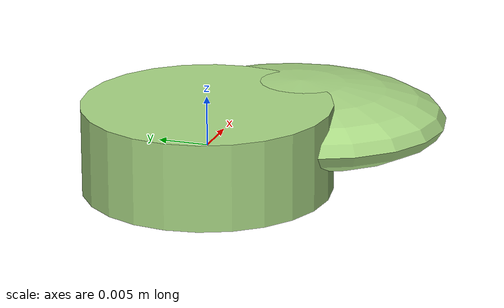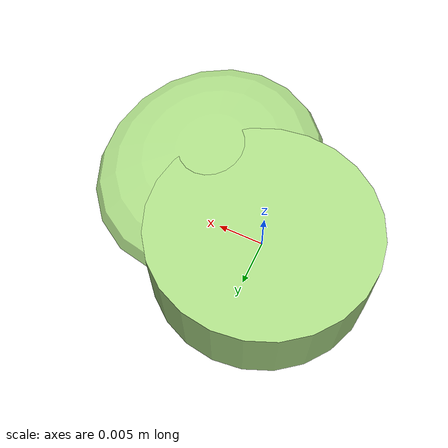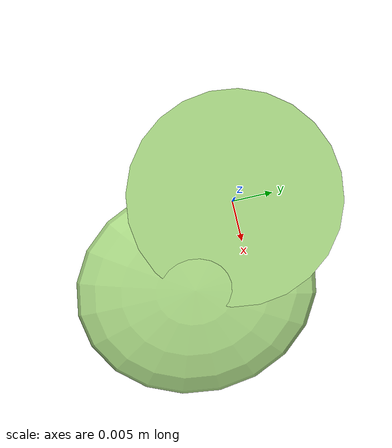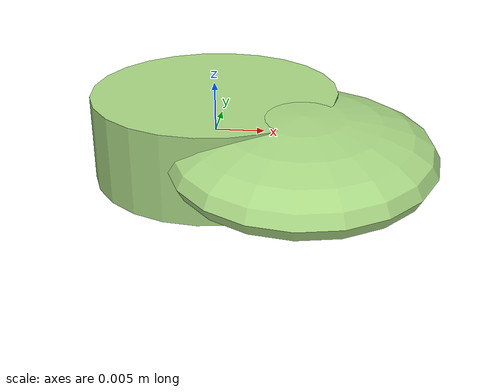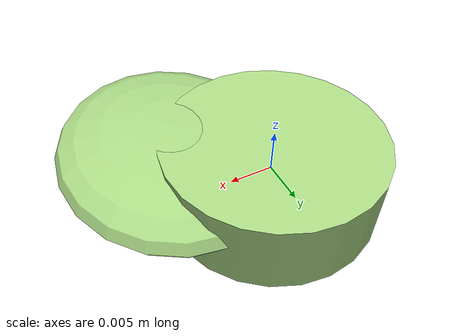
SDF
<?xml version="1.0" ?>
<!-- |    This document was autogenerated by xmacro from data/veggie_template/veggie_base.sdf.xacro  | -->
<!-- |    EDITING THIS FILE BY HAND IS NOT RECOMMENDED                                               | -->
<sdf version="1.8">
	<!-- Parameters -->
	<!-- Base -->
	<!-- Joint 0 -->
	<!-- Link 1 -->
	<!-- Joint 1 -->
	<!-- Link 2 -->
	<!-- Primitives -->
	<!-- All dimensions are half -->
	<!-- Object -->
	<model name="veggie">
		<!-- link0 -->
		<link name="link0">
			<inertial>
				<mass>0.0041902346672500245</mass>
				<inertia>
					<ixx>1.8765419304418916e-07</ixx>
					<ixy>0</ixy>
					<ixz>0</ixz>
					<iyy>1.8765419304418916e-07</iyy>
					<iyz>0</iyz>
					<izz>3.230529836288939e-07</izz>
				</inertia>
			</inertial>
			<visual name="link0_visual">
				<pose>0 0 0 0 0 0</pose>
				<geometry>
					<cylinder>
						<radius>0.012417458100103213</radius>
						<length>0.008650118377464799</length>
					</cylinder>
				</geometry>
				<material>
					<ambient>0.659 0.839 0.514 1</ambient>
					<diffuse>0.659 0.839 0.514 1</diffuse>
					<specular>0 0 0 0</specular>
					<emissive>0 0 0 1</emissive>
				</material>
			</visual>
			<collision name="link0_collision">
				<pose>0 0 0 0 0 0 </pose>
				<geometry>
					<cylinder>
						<radius>0.012417458100103213</radius>
						<length>0.008650118377464799</length>
					</cylinder>
				</geometry>
			</collision>
		</link>
		<!-- link1 -->
		<joint name="joint0" type="fixed">
			<pose relative_to="link0">0.009234079902853224 -0.006763878332806258 0.0007510781413285646 0.0 0.0 0.0</pose>
			<parent>link0</parent>
			<child>link1</child>
		</joint>
		<link name="link1">
			<pose relative_to="joint0">0 0 0 0 0 0</pose>
			<inertial>
				<mass>0.002931619912272129</mass>
				<inertia>
					<ixx>1.353239444024771e-07</ixx>
					<ixy>0</ixy>
					<ixz>0</ixz>
					<iyy>1.0282183987922297e-07</iyy>
					<iyz>0</iyz>
					<izz>2.2172724501691014e-07</izz>
				</inertia>
			</inertial>
			<visual name="link1_visual">
				<pose>0 0 0 0 0 0</pose>
				<geometry>
					<ellipsoid>
						<radii>0.012702979320298471 0.014724108737546374 0.0037418246430833387</radii>
					</ellipsoid>
				</geometry>
				<material>
					<ambient>0.659 0.839 0.514 1</ambient>
					<diffuse>0.659 0.839 0.514 1</diffuse>
					<specular>0 0 0 0</specular>
					<emissive>0 0 0 1</emissive>
				</material>
			</visual>
			<collision name="link1_collision">
				<pose>0 0 0 0 0 0 </pose>
				<geometry>
					<ellipsoid>
						<radii>0.012702979320298471 0.014724108737546374 0.0037418246430833387</radii>
					</ellipsoid>
				</geometry>
			</collision>
		</link>
		<!-- link2 -->
	</model>
</sdf>
